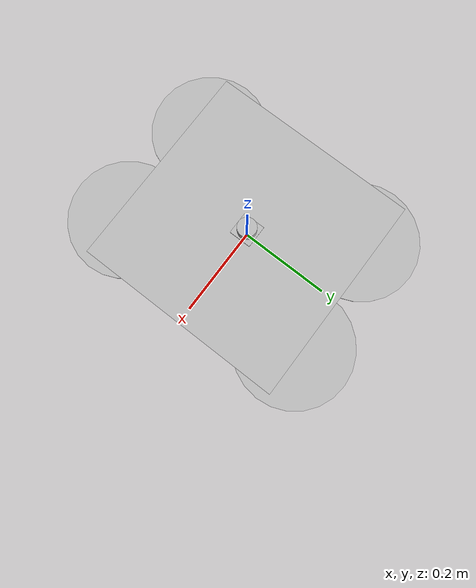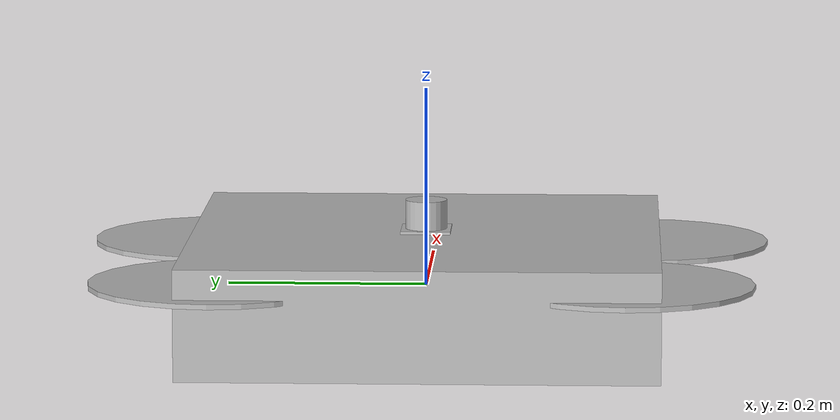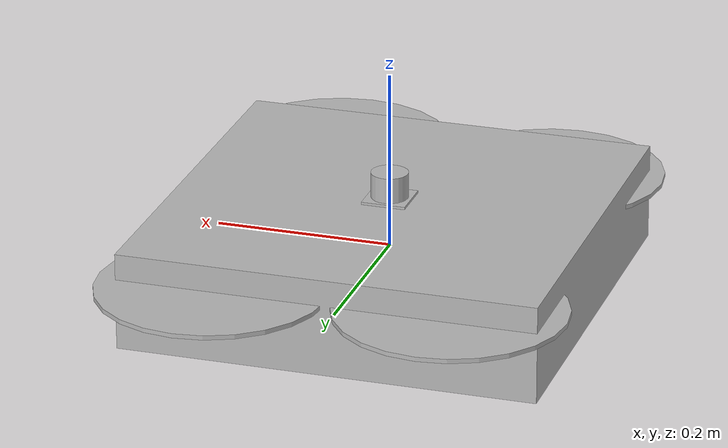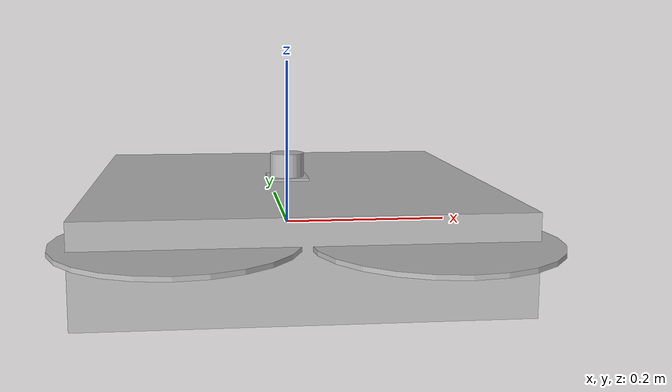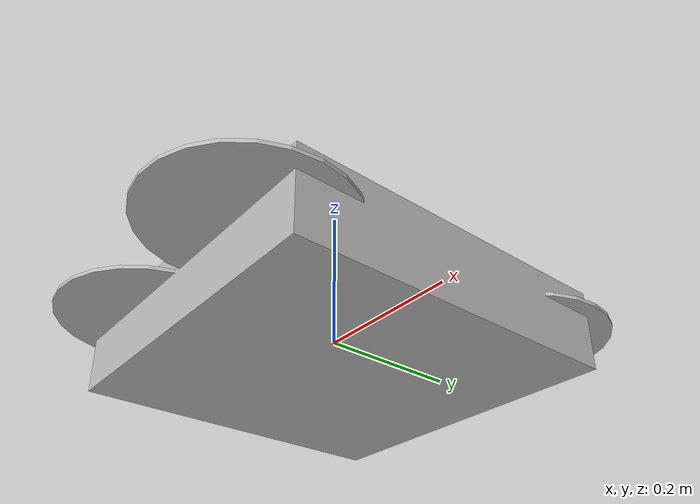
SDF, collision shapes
<?xml version="1.0" ?>
<sdf version="1.5">
  <model name='iris_d435_lidar'>
    <include>
      <uri>model://iris</uri>
    </include>

    <include>
      <uri>model://d435i</uri>
      <pose>0.12 0 0 0 0 0</pose>
    </include>

    <joint name="realsense_camera_joint" type="fixed">
      <child>d435i::camera_link</child>
      <parent>iris::base_link</parent>
      <axis>
        <xyz>0 0 1</xyz>
        <limit>
          <upper>0</upper>
          <lower>0</lower>
        </limit>
      </axis>
    </joint>

  <!-- 2D Lidar based on Hokuyo Lidar -->
    <include>
        <uri>model://2d_lidar</uri>
        <pose>0 0 0.052 0 0 0</pose>
      </include>
    <joint name="lidar_joint" type="fixed">
      <child>2d_lidar::link</child>
      <parent>iris::base_link</parent>
      <axis>
        <xyz>0 0 1</xyz>
        <limit>
          <upper>0</upper>
          <lower>0</lower>
        </limit>
      </axis>
    </joint>

  </model>
</sdf>

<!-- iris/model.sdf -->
<!-- DO NOT EDIT: Generated from iris.sdf.jinja -->
<sdf version='1.6'>
  <model name='iris'>
    <link name='base_link'>
      <pose>0 0 0 0 0 0</pose>
      <inertial>
        <pose>0 0 0 0 0 0</pose>
        <mass>1.5</mass>
        <inertia>
          <ixx>0.029125</ixx>
          <ixy>0</ixy>
          <ixz>0</ixz>
          <iyy>0.029125</iyy>
          <iyz>0</iyz>
          <izz>0.055225</izz>
        </inertia>
      </inertial>
      <collision name='base_link_inertia_collision'>
        <pose>0 0 0 0 0 0</pose>
        <geometry>
          <box>
            <size>0.47 0.47 0.11</size>
          </box>
        </geometry>
        <surface>
          <contact>
            <ode>
              <min_depth>0.001</min_depth>
              <max_vel>0</max_vel>
            </ode>
          </contact>
          <friction>
            <ode/>
          </friction>
        </surface>
      </collision>
      <visual name='base_link_inertia_visual'>
        <pose>0 0 0 0 0 0</pose>
        <geometry>
          <mesh>
            <scale>1 1 1</scale>
            <uri>model://iris/meshes/iris.stl</uri>
          </mesh>
        </geometry>
      </visual>
      <gravity>1</gravity>
      <velocity_decay/>
    </link>
    <link name='/imu_link'>
      <pose>0 0 0 0 0 0</pose>
      <inertial>
        <pose>0 0 0 0 0 0</pose>
        <mass>0.015</mass>
        <inertia>
          <ixx>1e-05</ixx>
          <ixy>0</ixy>
          <ixz>0</ixz>
          <iyy>1e-05</iyy>
          <iyz>0</iyz>
          <izz>1e-05</izz>
        </inertia>
      </inertial>
    </link>
    <joint name='/imu_joint' type='revolute'>
      <child>/imu_link</child>
      <parent>base_link</parent>
      <axis>
        <xyz>1 0 0</xyz>
        <limit>
          <lower>0</lower>
          <upper>0</upper>
          <effort>0</effort>
          <velocity>0</velocity>
        </limit>
        <dynamics>
          <spring_reference>0</spring_reference>
          <spring_stiffness>0</spring_stiffness>
        </dynamics>
        <use_parent_model_frame>1</use_parent_model_frame>
      </axis>
    </joint>
    <link name='rotor_0'>
      <pose>0.13 -0.22 0.023 0 0 0</pose>
      <inertial>
        <pose>0 0 0 0 0 0</pose>
        <mass>0.005</mass>
        <inertia>
          <ixx>9.75e-07</ixx>
          <ixy>0</ixy>
          <ixz>0</ixz>
          <iyy>0.000273104</iyy>
          <iyz>0</iyz>
          <izz>0.000274004</izz>
        </inertia>
      </inertial>
      <collision name='rotor_0_collision'>
        <pose>0 0 0 0 0 0</pose>
        <geometry>
          <cylinder>
            <length>0.005</length>
            <radius>0.128</radius>
          </cylinder>
        </geometry>
        <surface>
          <contact>
            <ode/>
          </contact>
          <friction>
            <ode/>
          </friction>
        </surface>
      </collision>
      <visual name='rotor_0_visual'>
        <pose>0 0 0 0 0 0</pose>
        <geometry>
          <mesh>
            <scale>1 1 1</scale>
            <uri>model://iris/meshes/iris_prop_ccw.dae</uri>
          </mesh>
        </geometry>
      </visual>
      <gravity>1</gravity>
      <velocity_decay/>
    </link>
    <joint name='rotor_0_joint' type='revolute'>
      <child>rotor_0</child>
      <parent>base_link</parent>
      <axis>
        <xyz>0 0 1</xyz>
        <limit>
          <lower>-1e+16</lower>
          <upper>1e+16</upper>
        </limit>
        <dynamics>
          <spring_reference>0</spring_reference>
          <spring_stiffness>0</spring_stiffness>
        </dynamics>
        <use_parent_model_frame>1</use_parent_model_frame>
      </axis>
    </joint>
    <link name='rotor_1'>
      <pose>-0.13 0.2 0.023 0 0 0</pose>
      <inertial>
        <pose>0 0 0 0 0 0</pose>
        <mass>0.005</mass>
        <inertia>
          <ixx>9.75e-07</ixx>
          <ixy>0</ixy>
          <ixz>0</ixz>
          <iyy>0.000273104</iyy>
          <iyz>0</iyz>
          <izz>0.000274004</izz>
        </inertia>
      </inertial>
      <collision name='rotor_1_collision'>
        <pose>0 0 0 0 0 0</pose>
        <geometry>
          <cylinder>
            <length>0.005</length>
            <radius>0.128</radius>
          </cylinder>
        </geometry>
        <surface>
          <contact>
            <ode/>
          </contact>
          <friction>
            <ode/>
          </friction>
        </surface>
      </collision>
      <visual name='rotor_1_visual'>
        <pose>0 0 0 0 0 0</pose>
        <geometry>
          <mesh>
            <scale>1 1 1</scale>
            <uri>model://iris/meshes/iris_prop_ccw.dae</uri>
          </mesh>
        </geometry>
      </visual>
      <gravity>1</gravity>
      <velocity_decay/>
    </link>
    <joint name='rotor_1_joint' type='revolute'>
      <child>rotor_1</child>
      <parent>base_link</parent>
      <axis>
        <xyz>0 0 1</xyz>
        <limit>
          <lower>-1e+16</lower>
          <upper>1e+16</upper>
        </limit>
        <dynamics>
          <spring_reference>0</spring_reference>
          <spring_stiffness>0</spring_stiffness>
        </dynamics>
        <use_parent_model_frame>1</use_parent_model_frame>
      </axis>
    </joint>
    <link name='rotor_2'>
      <pose>0.13 0.22 0.023 0 0 0</pose>
      <inertial>
        <pose>0 0 0 0 0 0</pose>
        <mass>0.005</mass>
        <inertia>
          <ixx>9.75e-07</ixx>
          <ixy>0</ixy>
          <ixz>0</ixz>
          <iyy>0.000273104</iyy>
          <iyz>0</iyz>
          <izz>0.000274004</izz>
        </inertia>
      </inertial>
      <collision name='rotor_2_collision'>
        <pose>0 0 0 0 0 0</pose>
        <geometry>
          <cylinder>
            <length>0.005</length>
            <radius>0.128</radius>
          </cylinder>
        </geometry>
        <surface>
          <contact>
            <ode/>
          </contact>
          <friction>
            <ode/>
          </friction>
        </surface>
      </collision>
      <visual name='rotor_2_visual'>
        <pose>0 0 0 0 0 0</pose>
        <geometry>
          <mesh>
            <scale>1 1 1</scale>
            <uri>model://iris/meshes/iris_prop_cw.dae</uri>
          </mesh>
        </geometry>
      </visual>
      <gravity>1</gravity>
      <velocity_decay/>
    </link>
    <joint name='rotor_2_joint' type='revolute'>
      <child>rotor_2</child>
      <parent>base_link</parent>
      <axis>
        <xyz>0 0 1</xyz>
        <limit>
          <lower>-1e+16</lower>
          <upper>1e+16</upper>
        </limit>
        <dynamics>
          <spring_reference>0</spring_reference>
          <spring_stiffness>0</spring_stiffness>
        </dynamics>
        <use_parent_model_frame>1</use_parent_model_frame>
      </axis>
    </joint>
    <link name='rotor_3'>
      <pose>-0.13 -0.2 0.023 0 0 0</pose>
      <inertial>
        <pose>0 0 0 0 0 0</pose>
        <mass>0.005</mass>
        <inertia>
          <ixx>9.75e-07</ixx>
          <ixy>0</ixy>
          <ixz>0</ixz>
          <iyy>0.000273104</iyy>
          <iyz>0</iyz>
          <izz>0.000274004</izz>
        </inertia>
      </inertial>
      <collision name='rotor_3_collision'>
        <pose>0 0 0 0 0 0</pose>
        <geometry>
          <cylinder>
            <length>0.005</length>
            <radius>0.128</radius>
          </cylinder>
        </geometry>
        <surface>
          <contact>
            <ode/>
          </contact>
          <friction>
            <ode/>
          </friction>
        </surface>
      </collision>
      <visual name='rotor_3_visual'>
        <pose>0 0 0 0 0 0</pose>
        <geometry>
          <mesh>
            <scale>1 1 1</scale>
            <uri>model://iris/meshes/iris_prop_cw.dae</uri>
          </mesh>
        </geometry>
      </visual>
      <gravity>1</gravity>
      <velocity_decay/>
    </link>
    <joint name='rotor_3_joint' type='revolute'>
      <child>rotor_3</child>
      <parent>base_link</parent>
      <axis>
        <xyz>0 0 1</xyz>
        <limit>
          <lower>-1e+16</lower>
          <upper>1e+16</upper>
        </limit>
        <dynamics>
          <spring_reference>0</spring_reference>
          <spring_stiffness>0</spring_stiffness>
        </dynamics>
        <use_parent_model_frame>1</use_parent_model_frame>
      </axis>
    </joint>
    <plugin name='rosbag' filename='libgazebo_multirotor_base_plugin.so'>
      <robotNamespace/>
      <linkName>base_link</linkName>
      <rotorVelocitySlowdownSim>10</rotorVelocitySlowdownSim>
    </plugin>
    <plugin name='front_right_motor_model' filename='libgazebo_motor_model.so'>
      <robotNamespace/>
      <jointName>rotor_0_joint</jointName>
      <linkName>rotor_0</linkName>
      <turningDirection>ccw</turningDirection>
      <timeConstantUp>0.0125</timeConstantUp>
      <timeConstantDown>0.025</timeConstantDown>
      <maxRotVelocity>1100</maxRotVelocity>
      <motorConstant>5.84e-06</motorConstant>
      <momentConstant>0.06</momentConstant>
      <commandSubTopic>/gazebo/command/motor_speed</commandSubTopic>
      <motorNumber>0</motorNumber>
      <rotorDragCoefficient>0.000175</rotorDragCoefficient>
      <rollingMomentCoefficient>1e-06</rollingMomentCoefficient>
      <motorSpeedPubTopic>/motor_speed/0</motorSpeedPubTopic>
      <rotorVelocitySlowdownSim>10</rotorVelocitySlowdownSim>
    </plugin>
    <plugin name='back_left_motor_model' filename='libgazebo_motor_model.so'>
      <robotNamespace/>
      <jointName>rotor_1_joint</jointName>
      <linkName>rotor_1</linkName>
      <turningDirection>ccw</turningDirection>
      <timeConstantUp>0.0125</timeConstantUp>
      <timeConstantDown>0.025</timeConstantDown>
      <maxRotVelocity>1100</maxRotVelocity>
      <motorConstant>5.84e-06</motorConstant>
      <momentConstant>0.06</momentConstant>
      <commandSubTopic>/gazebo/command/motor_speed</commandSubTopic>
      <motorNumber>1</motorNumber>
      <rotorDragCoefficient>0.000175</rotorDragCoefficient>
      <rollingMomentCoefficient>1e-06</rollingMomentCoefficient>
      <motorSpeedPubTopic>/motor_speed/1</motorSpeedPubTopic>
      <rotorVelocitySlowdownSim>10</rotorVelocitySlowdownSim>
    </plugin>
    <plugin name='front_left_motor_model' filename='libgazebo_motor_model.so'>
      <robotNamespace/>
      <jointName>rotor_2_joint</jointName>
      <linkName>rotor_2</linkName>
      <turningDirection>cw</turningDirection>
      <timeConstantUp>0.0125</timeConstantUp>
      <timeConstantDown>0.025</timeConstantDown>
      <maxRotVelocity>1100</maxRotVelocity>
      <motorConstant>5.84e-06</motorConstant>
      <momentConstant>0.06</momentConstant>
      <commandSubTopic>/gazebo/command/motor_speed</commandSubTopic>
      <motorNumber>2</motorNumber>
      <rotorDragCoefficient>0.000175</rotorDragCoefficient>
      <rollingMomentCoefficient>1e-06</rollingMomentCoefficient>
      <motorSpeedPubTopic>/motor_speed/2</motorSpeedPubTopic>
      <rotorVelocitySlowdownSim>10</rotorVelocitySlowdownSim>
    </plugin>
    <plugin name='back_right_motor_model' filename='libgazebo_motor_model.so'>
      <robotNamespace/>
      <jointName>rotor_3_joint</jointName>
      <linkName>rotor_3</linkName>
      <turningDirection>cw</turningDirection>
      <timeConstantUp>0.0125</timeConstantUp>
      <timeConstantDown>0.025</timeConstantDown>
      <maxRotVelocity>1100</maxRotVelocity>
      <motorConstant>5.84e-06</motorConstant>
      <momentConstant>0.06</momentConstant>
      <commandSubTopic>/gazebo/command/motor_speed</commandSubTopic>
      <motorNumber>3</motorNumber>
      <rotorDragCoefficient>0.000175</rotorDragCoefficient>
      <rollingMomentCoefficient>1e-06</rollingMomentCoefficient>
      <motorSpeedPubTopic>/motor_speed/3</motorSpeedPubTopic>
      <rotorVelocitySlowdownSim>10</rotorVelocitySlowdownSim>
    </plugin>
    <model name='gps0'>
      <link name='link'>
        <pose>0 0 0 0 0 0</pose>
        <inertial>
          <pose>0 0 0 0 0 0</pose>
          <mass>0.01</mass>
          <inertia>
            <ixx>2.1733e-06</ixx>
            <ixy>0</ixy>
            <ixz>0</ixz>
            <iyy>2.1733e-06</iyy>
            <iyz>0</iyz>
            <izz>1.8e-07</izz>
          </inertia>
        </inertial>
        <visual name='visual'>
          <geometry>
            <cylinder>
              <radius>0.01</radius>
              <length>0.002</length>
            </cylinder>
          </geometry>
        </visual>
        <sensor name='gps' type='gps'>
          <pose>0 0 0 0 0 0</pose>
          <plugin name='gps_plugin' filename='libgazebo_gps_plugin.so'>
            <robotNamespace/>
            <gpsNoise>1</gpsNoise>
            <gpsXYRandomWalk>2.0</gpsXYRandomWalk>
            <gpsZRandomWalk>4.0</gpsZRandomWalk>
            <gpsXYNoiseDensity>0.0002</gpsXYNoiseDensity>
            <gpsZNoiseDensity>0.0004</gpsZNoiseDensity>
            <gpsVXYNoiseDensity>0.2</gpsVXYNoiseDensity>
            <gpsVZNoiseDensity>0.4</gpsVZNoiseDensity>
          </plugin>
        </sensor>
      </link>
    </model>
    <joint name='gps0_joint' type='fixed'>
      <parent>base_link</parent>
      <child>gps0::link</child>
    </joint>
    <plugin name='groundtruth_plugin' filename='libgazebo_groundtruth_plugin.so'>
      <robotNamespace/>
    </plugin>
    <plugin name='magnetometer_plugin' filename='libgazebo_magnetometer_plugin.so'>
      <robotNamespace/>
      <pubRate>100</pubRate>
      <noiseDensity>0.0004</noiseDensity>
      <randomWalk>6.4e-06</randomWalk>
      <biasCorrelationTime>600</biasCorrelationTime>
      <magTopic>/mag</magTopic>
    </plugin>
    <plugin name='barometer_plugin' filename='libgazebo_barometer_plugin.so'>
      <robotNamespace/>
      <pubRate>50</pubRate>
      <baroTopic>/baro</baroTopic>
      <baroDriftPaPerSec>0</baroDriftPaPerSec>
    </plugin>
    <plugin name='mavlink_interface' filename='libgazebo_mavlink_interface.so'>
      <robotNamespace/>
      <imuSubTopic>/imu</imuSubTopic>
      <magSubTopic>/mag</magSubTopic>
      <baroSubTopic>/baro</baroSubTopic>
      <mavlink_addr>INADDR_ANY</mavlink_addr>
      <mavlink_tcp_port>{{ mavlink_tcp_port }}</mavlink_tcp_port>
      <mavlink_udp_port>{{ mavlink_udp_port }}</mavlink_udp_port>
      <serialEnabled>{{ serial_enabled }}</serialEnabled>
      <serialDevice>{{ serial_device }}</serialDevice>
      <baudRate>{{ serial_baudrate }}</baudRate>
      <qgc_addr>INADDR_ANY</qgc_addr>
      <qgc_udp_port>14550</qgc_udp_port>
      <sdk_addr>INADDR_ANY</sdk_addr>
      <sdk_udp_port>14540</sdk_udp_port>
      <hil_mode>{{ hil_mode }}</hil_mode>
      <hil_state_level>0</hil_state_level>
      <send_vision_estimation>0</send_vision_estimation>
      <send_odometry>1</send_odometry>
      <enable_lockstep>1</enable_lockstep>
      <use_tcp>1</use_tcp>
      <motorSpeedCommandPubTopic>/gazebo/command/motor_speed</motorSpeedCommandPubTopic>
      <control_channels>
        <channel name='rotor1'>
          <input_index>0</input_index>
          <input_offset>0</input_offset>
          <input_scaling>1000</input_scaling>
          <zero_position_disarmed>0</zero_position_disarmed>
          <zero_position_armed>100</zero_position_armed>
          <joint_control_type>velocity</joint_control_type>
        </channel>
        <channel name='rotor2'>
          <input_index>1</input_index>
          <input_offset>0</input_offset>
          <input_scaling>1000</input_scaling>
          <zero_position_disarmed>0</zero_position_disarmed>
          <zero_position_armed>100</zero_position_armed>
          <joint_control_type>velocity</joint_control_type>
        </channel>
        <channel name='rotor3'>
          <input_index>2</input_index>
          <input_offset>0</input_offset>
          <input_scaling>1000</input_scaling>
          <zero_position_disarmed>0</zero_position_disarmed>
          <zero_position_armed>100</zero_position_armed>
          <joint_control_type>velocity</joint_control_type>
        </channel>
        <channel name='rotor4'>
          <input_index>3</input_index>
          <input_offset>0</input_offset>
          <input_scaling>1000</input_scaling>
          <zero_position_disarmed>0</zero_position_disarmed>
          <zero_position_armed>100</zero_position_armed>
          <joint_control_type>velocity</joint_control_type>
        </channel>
        <channel name='rotor5'>
          <input_index>4</input_index>
          <input_offset>1</input_offset>
          <input_scaling>324.6</input_scaling>
          <zero_position_disarmed>0</zero_position_disarmed>
          <zero_position_armed>0</zero_position_armed>
          <joint_control_type>velocity</joint_control_type>
          <joint_control_pid>
            <p>0.1</p>
            <i>0</i>
            <d>0</d>
            <iMax>0.0</iMax>
            <iMin>0.0</iMin>
            <cmdMax>2</cmdMax>
            <cmdMin>-2</cmdMin>
          </joint_control_pid>
          <joint_name>zephyr_delta_wing::propeller_joint</joint_name>
        </channel>
        <channel name='rotor6'>
          <input_index>5</input_index>
          <input_offset>0</input_offset>
          <input_scaling>0.524</input_scaling>
          <zero_position_disarmed>0</zero_position_disarmed>
          <zero_position_armed>0</zero_position_armed>
          <joint_control_type>position</joint_control_type>
          <joint_name>zephyr_delta_wing::flap_left_joint</joint_name>
          <joint_control_pid>
            <p>10.0</p>
            <i>0</i>
            <d>0</d>
            <iMax>0</iMax>
            <iMin>0</iMin>
            <cmdMax>20</cmdMax>
            <cmdMin>-20</cmdMin>
          </joint_control_pid>
        </channel>
        <channel name='rotor7'>
          <input_index>6</input_index>
          <input_offset>0</input_offset>
          <input_scaling>0.524</input_scaling>
          <zero_position_disarmed>0</zero_position_disarmed>
          <zero_position_armed>0</zero_position_armed>
          <joint_control_type>position</joint_control_type>
          <joint_name>zephyr_delta_wing::flap_right_joint</joint_name>
          <joint_control_pid>
            <p>10.0</p>
            <i>0</i>
            <d>0</d>
            <iMax>0</iMax>
            <iMin>0</iMin>
            <cmdMax>20</cmdMax>
            <cmdMin>-20</cmdMin>
          </joint_control_pid>
        </channel>
        <channel name='rotor8'>
          <input_index>7</input_index>
          <input_offset>0</input_offset>
          <input_scaling>0.524</input_scaling>
          <zero_position_disarmed>0</zero_position_disarmed>
          <zero_position_armed>0</zero_position_armed>
          <joint_control_type>position</joint_control_type>
        </channel>
      </control_channels>
    </plugin>
    <static>0</static>
    <plugin name='rotors_gazebo_imu_plugin' filename='libgazebo_imu_plugin.so'>
      <robotNamespace/>
      <linkName>/imu_link</linkName>
      <imuTopic>/imu</imuTopic>
      <gyroscopeNoiseDensity>0.00018665</gyroscopeNoiseDensity>
      <gyroscopeRandomWalk>3.8785e-05</gyroscopeRandomWalk>
      <gyroscopeBiasCorrelationTime>1000.0</gyroscopeBiasCorrelationTime>
      <gyroscopeTurnOnBiasSigma>0.0087</gyroscopeTurnOnBiasSigma>
      <accelerometerNoiseDensity>0.00186</accelerometerNoiseDensity>
      <accelerometerRandomWalk>0.006</accelerometerRandomWalk>
      <accelerometerBiasCorrelationTime>300.0</accelerometerBiasCorrelationTime>
      <accelerometerTurnOnBiasSigma>0.196</accelerometerTurnOnBiasSigma>
    </plugin>
  </model>
</sdf>

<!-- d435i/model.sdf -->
<sdf version="1.5">
  <model name="d435i">
    <pose>0 0 0 0 0 0</pose>
    <link name="camera_link">
      <inertial>
        <mass>0.072</mass>
          <inertia>
            <ixx>4.6928e-5</ixx>
            <ixy>4.8e-10</ixy>
            <ixz>1.89e-9</ixz>
            <iyy>6.641e-6</iyy>
            <iyz>1.5406e-7</iyz>
            <izz>4.6498e-5</izz>
          </inertia>
      </inertial>
      <collision name="collision">
        <geometry>
          <box>
            <size>0.001 0.001 0.001</size>
          </box>
        </geometry>
      </collision>
      <visual name="visual">
        <cast_shadows>false</cast_shadows>
        <geometry>
          <mesh>
            <uri>model://d435i/d435i.dae</uri>
            <scale>1.0 1.0 1.0</scale>
          </mesh>
        </geometry>
      </visual>

      <sensor name="camera" type="depth">
        <pose>0 0 0 0 0.2 0</pose>
        <camera name="depth">
          <horizontal_fov>1.5708</horizontal_fov>
          <image>
            <width>640</width>
            <height>480</height>
            <format>R8G8B8</format>
          </image>
          <clip>
            <near>0.1</near>
            <far>300</far>
          </clip>
          <noise>
            <type>gaussian</type>
            <mean>0.0</mean>
            <stddev>0.0001</stddev>
          </noise>
        </camera>
        <always_on>1</always_on>
        <visualize>0</visualize>
        <update_rate>15</update_rate>
        <plugin name="camera_plugin" filename="libgazebo_ros_openni_kinect.so">
          <baseline>0.05</baseline>
          <alwaysOn>true</alwaysOn>
          <robotNamespace>/camera</robotNamespace>
          <updateRate>0.0</updateRate>
          <cameraName>depth</cameraName>
          <imageTopicName>rgb_image_raw</imageTopicName>
          <cameraInfoTopicName>rgb_camera_info</cameraInfoTopicName>
          <depthImageTopicName>image_raw</depthImageTopicName>
          <depthImageCameraInfoTopicName>camera_info</depthImageCameraInfoTopicName>
          <pointCloudTopicName>color/points</pointCloudTopicName>
          <frameName>depth_camera_link</frameName>
          <pointCloudCutoff>0.11</pointCloudCutoff>
          <pointCloudCutoffMax>7.0</pointCloudCutoffMax>
          <distortionK1>0</distortionK1>
          <distortionK2>0</distortionK2>
          <distortionK3>0</distortionK3>
          <distortionT1>0</distortionT1>
          <distortionT2>0</distortionT2>
          <hackBaseline>0.05</hackBaseline>
        </plugin>
      </sensor>

      <sensor type="multicamera" name="stereo_camera">
        <camera name="left">
          <pose>0 0 0 0 0 0</pose>
          <horizontal_fov>1.5708</horizontal_fov>
          <image>
            <width>640</width>
            <height>480</height>
            <format>R8G8B8</format>
          </image>
          <clip>
            <near>0.05</near>
            <far>1500</far>
          </clip>
          <noise>
            <type>gaussian</type>
            <mean>0.0</mean>
            <stddev>0.0</stddev>
          </noise>
        </camera>
        <camera name="right">
          <pose>0 -0.05 0 0 0 0</pose>
          <horizontal_fov>1.5708</horizontal_fov>
          <image>
            <width>640</width>
            <height>480</height>
            <format>R8G8B8</format>
          </image>
          <clip>
            <near>0.05</near>
            <far>1500</far>
          </clip>
          <noise>
            <type>gaussian</type>
            <mean>0.0</mean>
            <stddev>0.0</stddev>
          </noise>
        </camera>
        <always_on>1</always_on>
        <visualize>0</visualize>
        <update_rate>15.0</update_rate>
        <!-- libgazebo_ros_multicamera.so -->
        <plugin name="stereo_camera_controller" filename="libgazebo_ros_multicamera.so">
          <alwaysOn>true</alwaysOn>
          <updateRate>0.0</updateRate>
          <robotNamespace>camera</robotNamespace>
          <cameraName>stereo</cameraName>
          <imageTopicName>image_raw</imageTopicName>
          <cameraInfoTopicName>camera_info</cameraInfoTopicName>
          <frameName>stereo_camera_link</frameName>
          <CxPrime>0.0</CxPrime>
          <Cx>0.0</Cx>
          <Cy>0.0</Cy>
          <focalLength>0.0</focalLength>
          <distortionK1>0.0</distortionK1>
          <distortionK2>0.0</distortionK2>
          <distortionK3>0.0</distortionK3>
          <distortionT1>0.0</distortionT1>
          <distortionT2>0.0</distortionT2>
          <hackBaseline>0.05</hackBaseline>
        </plugin>
      </sensor>

    </link>
  </model>
</sdf>

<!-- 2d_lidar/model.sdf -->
<sdf version="1.5">
  <model name="2d_lidar">
    <pose>0 0 0 0 0 0</pose>
    <link name="link">
      <inertial>
        <mass>0.001</mass>
        <inertia> <!-- inertias are tricky to compute -->
          <ixx>0.001</ixx>
          <!-- for a box: ixx = 0.083 * mass * (y*y + z*z) -->
          <ixy>0.0</ixy>
          <!-- for a box: ixy = 0 -->
          <ixz>0.0</ixz>
          <!-- for a box: ixz = 0 -->
          <iyy>0.001</iyy>
          <!-- for a box: iyy = 0.083 * mass * (x*x + z*z) -->
          <iyz>0.0</iyz>
          <!-- for a box: iyz = 0 -->
          <izz>0.001</izz>
          <!-- for a box: izz = 0.083 * mass * (x*x + y*y) -->
        </inertia>
      </inertial>

      <visual name="visual">
        <geometry>
          <mesh>
            <uri>model://2d_lidar/meshes/hokuyo.dae</uri>
          </mesh>
        </geometry>
      </visual>

      <collision name="collision-base">
        <pose>0 0 -0.0145 0 0 0</pose>
        <geometry>
          <box>
            <size>0.05 0.05 0.041</size>
          </box>
        </geometry>
      </collision>

      <collision name="collision-top">
        <pose>0 0 0.0205 0 0 0</pose>
        <geometry>
          <cylinder>
            <radius>0.021</radius>
            <length>0.029</length>
          </cylinder>
        </geometry>
      </collision>

      <sensor name="laser" type="ray">
        <pose>0 0 0.0175 0 -0 0</pose>
        <ray>
          <scan>
            <horizontal>
              <!-- angle range MS200 -->
              <samples>360</samples>
              <resolution>0.8</resolution>
              <min_angle>-3.14</min_angle>
              <max_angle>3.14</max_angle>
            </horizontal>
          </scan>
          <range>
            <!-- distance range MS200 -->
            <min>0.5</min>
            <max>12</max>
            <resolution>0.01</resolution>
          </range>
        </ray>
        <plugin name="gazebo_ros_head_hokuyo_controller" filename="libgazebo_ros_laser.so">
          <robotNamespace></robotNamespace>
          <topicName>scan</topicName>
          <frameName>laser_2d</frameName>
        </plugin>
        <always_on>1</always_on>
        <!-- data-hz -->
        <update_rate>10</update_rate>
        <visualize>false</visualize>
      </sensor>
    </link>
  </model>
</sdf>
